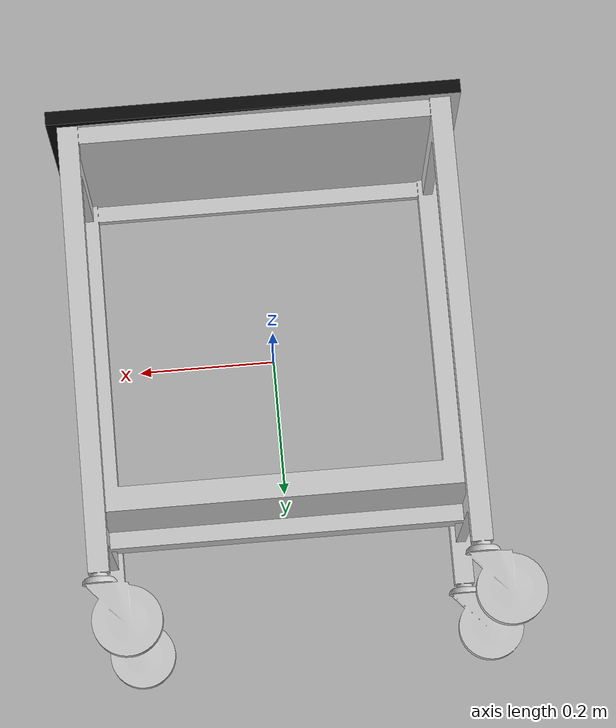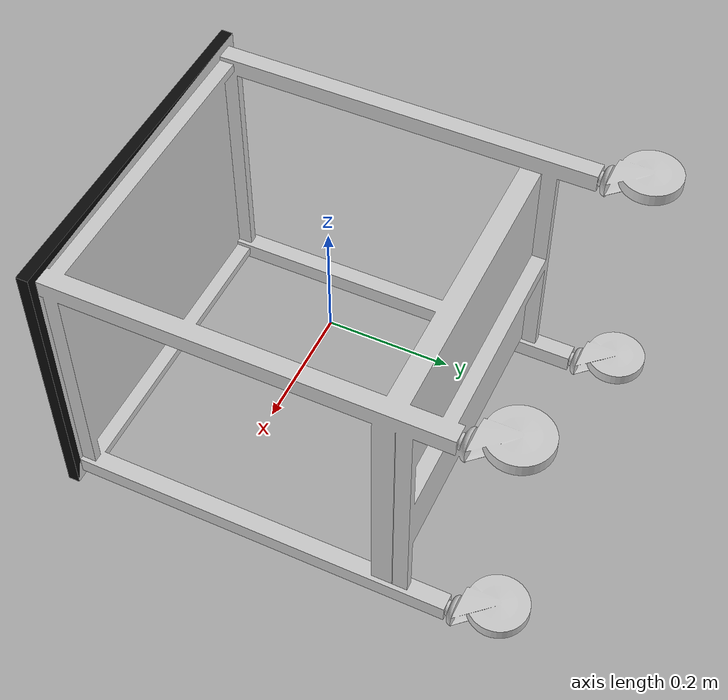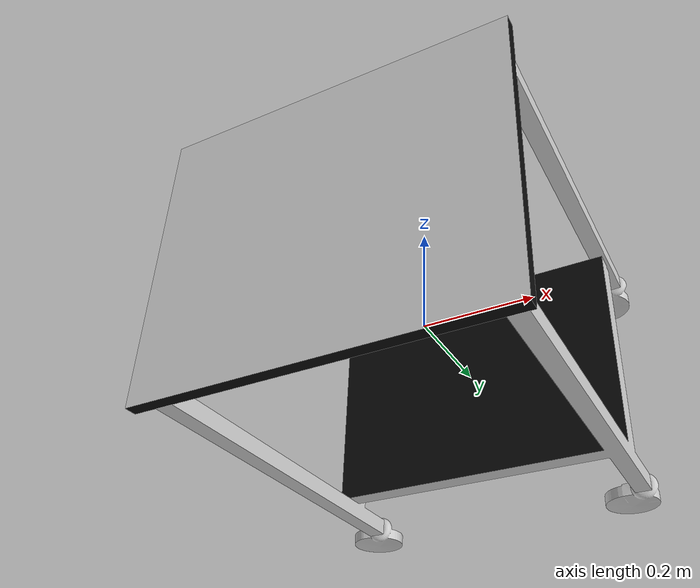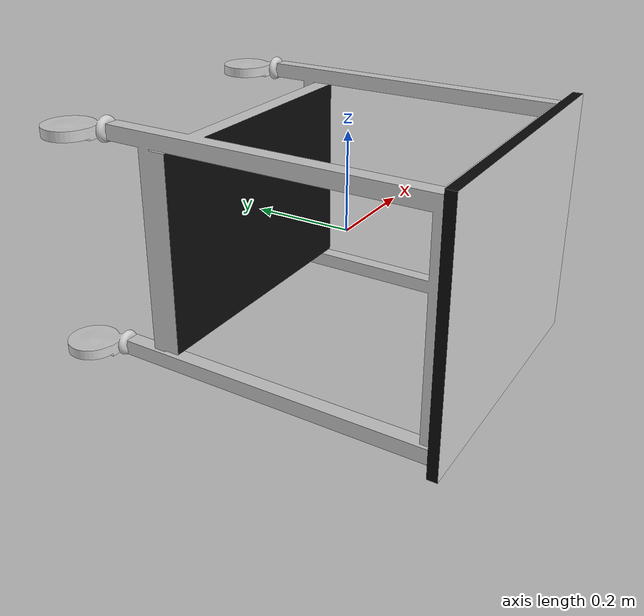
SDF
<?xml version="1.0" ?>
<sdf version='1.6'>
  <model name='xArm7_table_m'>
    <link name='xArm7_table_m'>
      <pose frame=''>0 0 0 0 -0 0</pose>
      <inertial>
        <pose frame=''>-1e-06 -0.000449 -0 0 -0 0</pose>
        <mass>18.25</mass>
        <inertia>
          <ixx>1.7526</ixx>
          <ixy>0.0092329</ixy>
          <ixz>-9.4464e-06</ixz>
          <iyy>1.0779</iyy>
          <iyz>-8.6208e-05</iyz>
          <izz>2.0182</izz>
        </inertia>
      </inertial>
      <collision name='xArm7_table_m_collision'>
        <pose frame=''>0 0 0 1.5708 -0 0</pose>
        <geometry>
          <mesh>
            <scale>1 1 1</scale>
            <uri>model://xArm7_table_m/meshes/xArm7_table_m.dae</uri>
          </mesh>
        </geometry>
      </collision>
      <visual name='xArm7_table_m_visual'>
        <pose frame=''>0 0 0 1.5708 -0 0</pose>
        <geometry>
          <mesh>
            <scale>1 1 1</scale>
            <uri>model://xArm7_table_m/meshes/xArm7_table_m.dae</uri>
          </mesh>
        </geometry>
      </visual>
    </link>
  </model>
</sdf>
